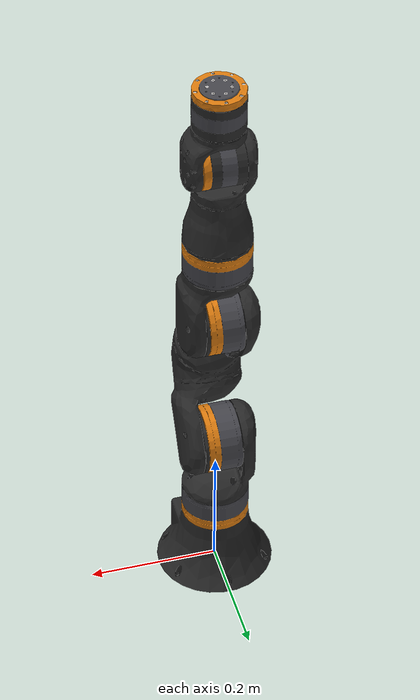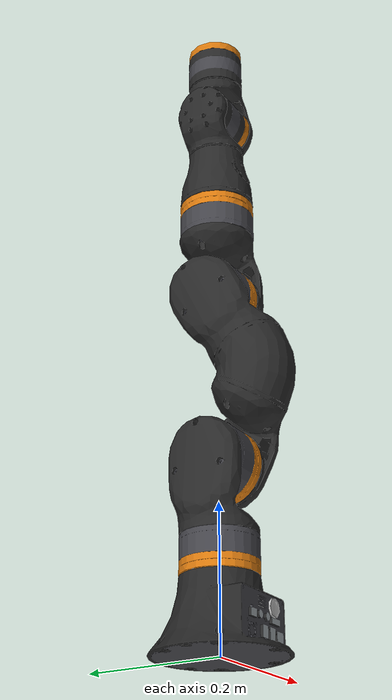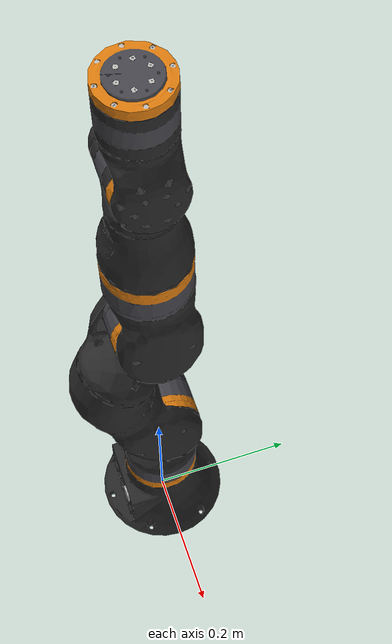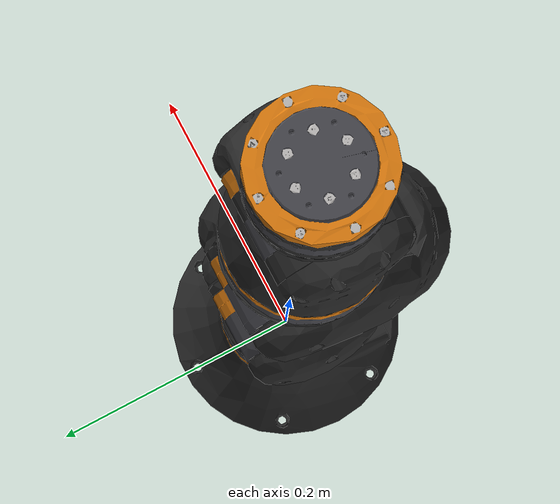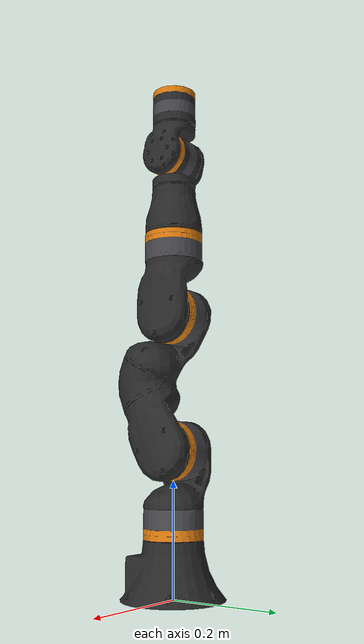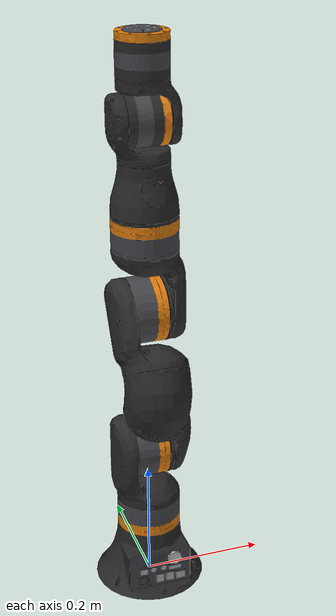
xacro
<?xml version="1.0"?>
<robot xmlns:xacro="http://wiki.ros.org/xacro" name="igus_rebel_workspace_with_gripper">

  <!-- Macros (Arm, Gripper, Camera) -->
  <xacro:include filename="$(find igus_rebel_description)/urdf/igus_rebel2.urdf" />
  <xacro:include filename="$(find igus_rebel_description)/urdf/igus_rebel2.control.xacro" />
  <xacro:include filename="$(find rebel_gripper)/urdf/rebel_gripper_macro.xacro" />
  <xacro:include filename="$(find camera_holder_description)/urdf/camera_holder_macro.xacro" />

  <!-- Parameters -->
  <xacro:arg name="tf_prefix" default="" />
  <xacro:arg name="hardware_protocol" default="rebel" />
  <xacro:arg name="gripper_type" default="none" />

  <!-- camera parameters -->
  <xacro:arg name="use_camera" default="false" />
  <xacro:arg name="camera_tilt_degrees" default="0.0" />

  <!-- robot end-effector link name -->
  <xacro:property name="robot_tool_link" value="link6" />

  <!-- Convert args to properties for conditionals -->
  <xacro:property name="gripper_type" value="$(arg gripper_type)" />

  <!-- 100°: Rebel Gripper from EduMove not attachable in axis-aligned way -->
  <xacro:arg name="gripper_orientation" default="1.7453" />

  <!-- Create link fixed to the "world" -->
  <link name="world" />

  <!-- Camera holder (optional) -->
  <xacro:if value="$(arg use_camera)">
    <xacro:camera_holder
      parent="world"
      prefix=""
      camera_tilt_degrees="$(arg camera_tilt_degrees)">
      <origin xyz="-0.22 0.48 1.10" rpy="0.0 ${pi/2} 0.0" />
    </xacro:camera_holder>
  </xacro:if>

  <!-- [world] -> [base_link] -->
  <joint name="world_to_robot_base" type="fixed">
    <parent link="world" />
    <child link="base_link" />
    <origin xyz="0 0 0" rpy="0 0 1.5708" />  <!--Correcting initial orientation-->
  </joint>

  <!-- Robot control for igus rebel arm -->
  <xacro:igus_rebel_control
    arm_id="rebel_arm"
    hardware_protocol="$(arg hardware_protocol)" />

  <!-- ===========================================
       ==             Load Gripper              ==
       ===========================================-->

  <!-- Igus Rebel Gripper -->
  <xacro:if value="${gripper_type == 'rebel'}">
    <xacro:rebel_gripper
      prefix="$(arg tf_prefix)"
      parent="${robot_tool_link}"
      orientation="0.0">
      <!-- Offset from `link6` -->
      <origin xyz="0.0 0.0 0.052" rpy="0 0 $(arg gripper_orientation)" />
    </xacro:rebel_gripper>
  </xacro:if>

  <!-- no gripper (fallback) -->
  <xacro:if value="${gripper_type == 'none'}"></xacro:if>

</robot>

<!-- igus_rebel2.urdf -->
<robot
  name="igus_rebel">
  <link
    name="base_link">
    <inertial>
      <origin
        xyz="-0.0011101 -0.00059494 0.040917"
        rpy="0 0 0" />
      <mass
        value="4.2944" />
      <inertia
        ixx="0.098117"
        ixy="4.4465E-07"
        ixz="3.3605E-05"
        iyy="0.086593"
        iyz="-1.8837E-06"
        izz="0.12838" />
    </inertial>
    <visual>
      <origin
        xyz="0 0 0"
        rpy="0 0 0" />
      <geometry>
        <mesh
          filename="package://igus_rebel_description/meshes/rebel_d00617809/base_link.dae" />
      </geometry>
    </visual>
    <collision>
      <origin
        xyz="0 0 0.05"
        rpy="0 0 0" />
      <geometry>
        <cylinder radius="0.09" length="0.1"/>
      </geometry>
    </collision>
  </link>
  <link
    name="motor1">
    <inertial>
      <origin
        xyz="0.00015243 0.00010812 -0.014668"
        rpy="0 0 0" />
      <mass
        value="2" />
      <inertia
        ixx="0.024041"
        ixy="8.3398E-08"
        ixz="-7.2533E-07"
        iyy="0.024081"
        iyz="-6.2967E-07"
        izz="0.037427" />
    </inertial>
    <visual>
      <origin
        xyz="0 0 0"
        rpy="0 0 0" />
      <geometry>
        <mesh
          filename="package://igus_rebel_description/meshes/rebel_d00617809/motor1.dae" />
      </geometry>
    </visual>
    <collision>
      <origin
        xyz="0 0 -0.0125"
        rpy="0 0 0" />
      <geometry>
        <cylinder radius="0.05" length="0.065"/>
      </geometry>
    </collision>
  </link>
  <joint
    name="J_motor1"
    type="fixed">
    <origin
      xyz="0 0 0.1462"
      rpy="0 0 3.1416" />
    <parent
      link="base_link" />
    <child
      link="motor1" />
    <axis
      xyz="0 0 0" />
  </joint>
  <link
    name="link1">
    <inertial>
      <origin
        xyz="2.5064E-06 -0.031151 0.06301"
        rpy="0 0 0" />
      <mass
        value="1.9246" />
      <inertia
        ixx="0.046865"
        ixy="-3.7969E-09"
        ixz="5.1665E-09"
        iyy="0.04904"
        iyz="0.00010721"
        izz="0.030611" />
    </inertial>
    <visual>
      <origin
        xyz="0 0 0"
        rpy="0 0 0" />
      <geometry>
        <mesh
          filename="package://igus_rebel_description/meshes/rebel_d00617809/link1.dae" />
      </geometry>
    </visual>
    <collision>
      <origin
        xyz="0 -0.045 0.08"
        rpy="0 0 0" />
      <geometry>
        <box size="0.1 0.03 0.1"/>
      </geometry>
    </collision>
  </link>
  <joint
    name="joint1"
    type="revolute">
    <origin
      xyz="0 0 0"
      rpy="0 0 0" />
    <parent
      link="motor1" />
    <child
      link="link1" />
    <axis
      xyz="0 0 1" />
    <limit
      lower="-3.106686"
      upper="3.106686"
      effort="330"
      velocity="0.785" />
    <dynamics
      damping="0.0"
      friction="0.0" />
  </joint>
  <link
    name="motor2">
    <inertial>
      <origin
        xyz="0.00015243 0.014668 0.00010812"
        rpy="0 0 0" />
      <mass
        value="2" />
      <inertia
        ixx="0.024041"
        ixy="7.2533E-07"
        ixz="8.3398E-08"
        iyy="0.037427"
        iyz="6.2967E-07"
        izz="0.024081" />
    </inertial>
    <visual>
      <origin
        xyz="0 0 0"
        rpy="0 0 0" />
      <geometry>
        <mesh
          filename="package://igus_rebel_description/meshes/rebel_d00617809/motor2.dae" />
      </geometry>
    </visual>
    <collision>
      <origin
        xyz="0 0.0125 0"
        rpy="1.57079 0 0" />
      <geometry>
        <cylinder radius="0.05" length="0.065"/>
      </geometry>
    </collision>
  </link>
  <joint
    name="J_motor2"
    type="fixed">
    <origin
      xyz="0 -0.0225000000000001 0.106"
      rpy="0 0 0" />
    <parent
      link="link1" />
    <child
      link="motor2" />
    <axis
      xyz="0 0 0" />
  </joint>
  <link
    name="link2">
    <inertial>
      <origin
        xyz="0.023424 0.025337 0.10782"
        rpy="0 0 0" />
      <mass
        value="5.689" />
      <inertia
        ixx="0.1162"
        ixy="-2.0164E-11"
        ixz="-0.00018569"
        iyy="0.10155"
        iyz="5.9595E-10"
        izz="0.08965" />
    </inertial>
    <visual>
      <origin
        xyz="0 0 0"
        rpy="0 0 0" />
      <geometry>
        <mesh
          filename="package://igus_rebel_description/meshes/rebel_d00617809/link2.dae" />
      </geometry>
    </visual>
    <collision>
      <origin
        xyz="0.05 -0.025 0.12"
        rpy="0 0 0" />
      <geometry>
        <cylinder radius="0.06" length="0.18"/>
      </geometry>
    </collision>
  </link>
  <joint
    name="joint2"
    type="revolute">
    <origin
      xyz="0 0.049 0"
      rpy="0 0 0" />
    <parent
      link="motor2" />
    <child
      link="link2" />
    <axis
      xyz="0 -1 0" />
    <limit
      lower="-1.378810"
      upper="2.426008"
      effort="330"
      velocity="0.785" />
    <dynamics
      damping="0.0"
      friction="0.0" />
  </joint>
  <link
    name="motor3">
    <inertial>
      <origin
        xyz="0.00015243 0.014668 0.00010812"
        rpy="0 0 0" />
      <mass
        value="2.0785" />
      <inertia
        ixx="0.024041"
        ixy="7.2533E-07"
        ixz="8.3398E-08"
        iyy="0.037427"
        iyz="6.2967E-07"
        izz="0.024081" />
    </inertial>
    <visual>
      <origin
        xyz="0 0 0"
        rpy="0 0 0" />
      <geometry>
        <mesh
          filename="package://igus_rebel_description/meshes/rebel_d00617809/motor3.dae" />
      </geometry>
    </visual>
    <collision>
      <origin
        xyz="0 0.0125 0"
        rpy="1.57079 0 0" />
      <geometry>
        <cylinder radius="0.05" length="0.065"/>
      </geometry>
    </collision>
  </link>
  <joint
    name="J_motor3"
    type="fixed">
    <origin
      xyz="0 -0.049 0.24152"
      rpy="0 0 0" />
    <parent
      link="link2" />
    <child
      link="motor3" />
    <axis
      xyz="0 0 0" />
  </joint>
  <link
    name="link3">
    <inertial>
      <origin
        xyz="1.8683E-06 0.030601 0.032537"
        rpy="0 0 0" />
      <mass
        value="2.5429" />
      <inertia
        ixx="0.051458"
        ixy="3.7774E-09"
        ixz="-4.5694E-09"
        iyy="0.057983"
        iyz="0.00010721"
        izz="0.035205" />
    </inertial>
    <visual>
      <origin
        xyz="0 0 0"
        rpy="0 0 0" />
      <geometry>
        <mesh
          filename="package://igus_rebel_description/meshes/rebel_d00617809/link3.dae" />
      </geometry>
    </visual>
    <collision>
      <origin
        xyz="0 0.045 0.03"
        rpy="0 0 0" />
      <geometry>
        <box size="0.1 0.03 0.1"/>
      </geometry>
    </collision>
  </link>
  <joint
    name="joint3"
    type="revolute">
    <origin
      xyz="0 0.0225 0"
      rpy="0 0 0" />
    <parent
      link="motor3" />
    <child
      link="link3" />
    <axis
      xyz="0 -1 0" />
    <limit
      lower="-1.378810"
      upper="2.426008"
      effort="330"
      velocity="0.785" />
    <dynamics
      damping="0.0"
      friction="0.0" />
  </joint>
  <link
    name="motor4">
    <inertial>
      <origin
        xyz="0.00015243 -0.00010812 0.014668"
        rpy="0 0 0" />
      <mass
        value="2.0785" />
      <inertia
        ixx="0.024041"
        ixy="-8.3398E-08"
        ixz="7.2533E-07"
        iyy="0.024081"
        iyz="-6.2967E-07"
        izz="0.037427" />
    </inertial>
    <visual>
      <origin
        xyz="0.0013449814287804 0 -0.0005195"
        rpy="0 0 0" />
      <geometry>
        <mesh
          filename="package://igus_rebel_description/meshes/rebel_d00617809/motor4.dae" />
      </geometry>
    </visual>
    <collision>
      <origin
        xyz="0 0 0.0125"
        rpy="0 0 0" />
      <geometry>
        <cylinder radius="0.05" length="0.065"/>
      </geometry>
    </collision>
  </link>
  <joint
    name="J_motor4"
    type="fixed">
    <origin
      xyz="0.0013449814287804 0 0.105479407401356"
      rpy="0 0 0" />
    <parent
      link="link3" />
    <child
      link="motor4" />
    <axis
      xyz="0 0 0" />
  </joint>
  <link
    name="link4">
    <inertial>
      <origin
        xyz="-0.0070458 -0.00089773 0.05185"
        rpy="0 0 0" />
      <mass
        value="2.2059" />
      <inertia
        ixx="0.02402"
        ixy="1.096E-07"
        ixz="2.3983E-05"
        iyy="0.025662"
        iyz="-1.1343E-06"
        izz="0.030673" />
    </inertial>
    <visual>
      <origin
        xyz="0.0013449814287804 0 -0.0005195"
        rpy="0 0 0" />
      <geometry>
        <mesh
          filename="package://igus_rebel_description/meshes/rebel_d00617809/link4.dae" />
      </geometry>
    </visual>
    <collision>
      <origin
        xyz="0 0 0.044"
        rpy="0 0 0" />
      <geometry>
        <cylinder radius="0.05" length="0.1"/>
      </geometry>
    </collision>
  </link>
  <joint
    name="joint4"
    type="revolute">
    <origin
      xyz="0 0 0.052"
      rpy="0 0 0" />
    <parent
      link="motor4" />
    <child
      link="link4" />
    <axis
      xyz="0 0 1" />
    <limit
      lower="-3.106686"
      upper="3.106686"
      effort="330"
      velocity="0.785" />
    <dynamics
      damping="0.0"
      friction="0.0" />
  </joint>
  <link
    name="motor5">
    <inertial>
      <origin
        xyz="3.9518E-05 0.02054 -0.00015792"
        rpy="0 0 0" />
      <mass
        value="1.3011" />
      <inertia
        ixx="0.010922"
        ixy="3.1358E-08"
        ixz="1.683E-08"
        iyy="0.014448"
        iyz="-3.8659E-08"
        izz="0.010868" />
    </inertial>
    <visual>
      <origin
        xyz="0.0013449814287804 0 -0.0005195"
        rpy="0 0 0" />
      <geometry>
        <mesh
          filename="package://igus_rebel_description/meshes/rebel_d00617809/motor5.dae" />
      </geometry>
    </visual>
    <collision>
      <origin
        xyz="0 0.0125 0"
        rpy="1.57079 0 0" />
      <geometry>
        <cylinder radius="0.04" length="0.065"/>
      </geometry>
    </collision>
  </link>
  <joint
    name="J_motor5"
    type="fixed">
    <origin
      xyz="0 -0.0182 0.142"
      rpy="0 0 0" />
    <parent
      link="link4" />
    <child
      link="motor5" />
    <axis
      xyz="0 0 0" />
  </joint>
  <link
    name="link5">
    <inertial>
      <origin
        xyz="7.5874E-05 0.022847 0.026585"
        rpy="0 0 0" />
      <mass
        value="0.70922" />
      <inertia
        ixx="0.0091752"
        ixy="-5.1443E-08"
        ixz="-7.751E-09"
        iyy="0.0086093"
        iyz="2.4553E-05"
        izz="0.0079966" />
    </inertial>
    <visual>
      <origin
        xyz="0.0013449814287804 0 -0.0005195"
        rpy="0 0 0" />
      <geometry>
        <mesh
          filename="package://igus_rebel_description/meshes/rebel_d00617809/link5.dae" />
      </geometry>
    </visual>
    <collision>
      <origin
        xyz="0 0 0"
        rpy="0 0 0" />
      <geometry>
        <mesh
          filename="package://igus_rebel_description/meshes/rebel_d00617809/collision/link5_hull.stl" />
      </geometry>
    </collision>
  </link>
  <joint
    name="joint5"
    type="revolute">
    <origin
      xyz="0 0.0182 0"
      rpy="0 0 0" />
    <parent
      link="motor5" />
    <child
      link="link5" />
    <axis
      xyz="0 -1 0" />
    <limit
      lower="-1.640609"
      upper="1.640609"
      effort="330"
      velocity="0.785" />
    <dynamics
      damping="0.0"
      friction="0.0" />
  </joint>
  <link
    name="link6">
    <inertial>
      <origin
        xyz="-0.00016088 -4.7449E-05 0.021219"
        rpy="0 0 0" />
      <mass
        value="1.2658" />
      <inertia
        ixx="0.010763"
        ixy="-2.2861E-07"
        ixz="-4.9144E-08"
        iyy="0.010792"
        iyz="-2.2502E-08"
        izz="0.014496" />
    </inertial>
    <visual>
      <origin
        xyz="0.0013449814287804 0 -0.0005195"
        rpy="0 0 0" />
      <geometry>
        <mesh
          filename="package://igus_rebel_description/meshes/rebel_d00617809/link6.dae" />
      </geometry>
    </visual>
    <collision>
      <origin
        xyz="0 0 0.0125"
        rpy="0 0 0" />
      <geometry>
        <cylinder radius="0.04" length="0.065"/>
      </geometry>
    </collision>
  </link>
  <joint
    name="joint6"
    type="revolute">
    <origin
      xyz="0 0 0.0768"
      rpy="0 0 0" />
    <parent
      link="link5" />
    <child
      link="link6" />
    <axis
      xyz="0 0 1" />
    <limit
      lower="-3.106686"
      upper="3.106686"
      effort="330"
      velocity="0.785" />
    <dynamics
      damping="0.0"
      friction="0.0" />
  </joint>
</robot>
